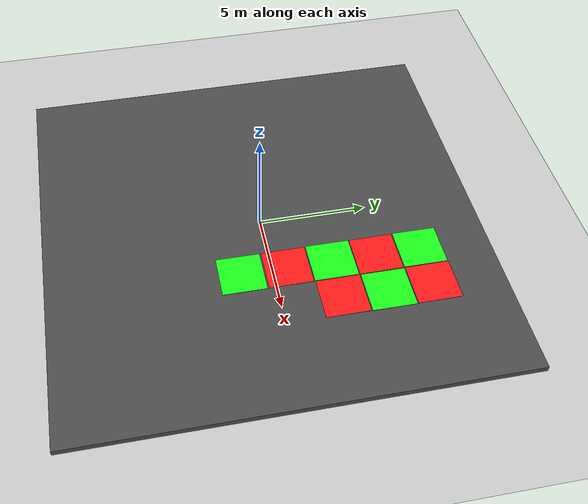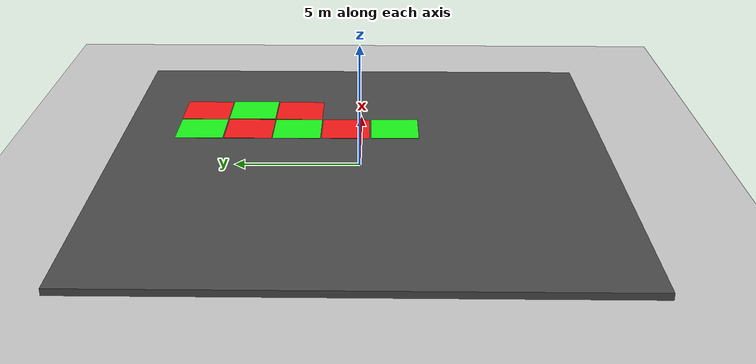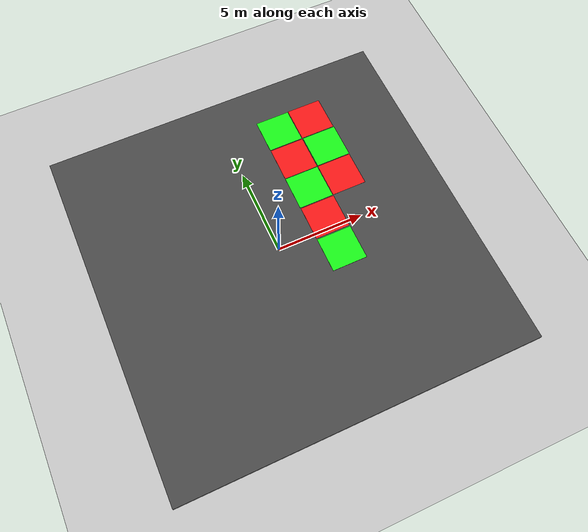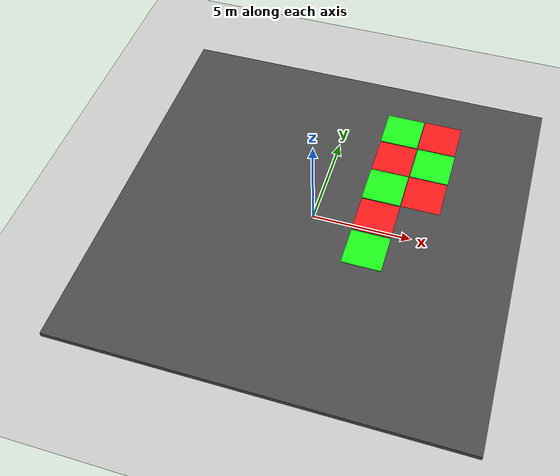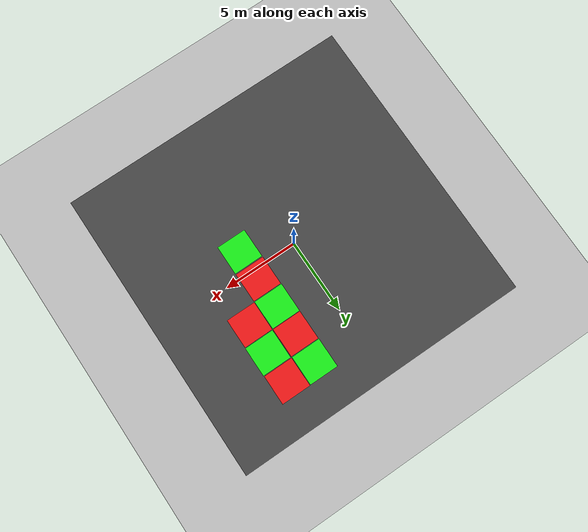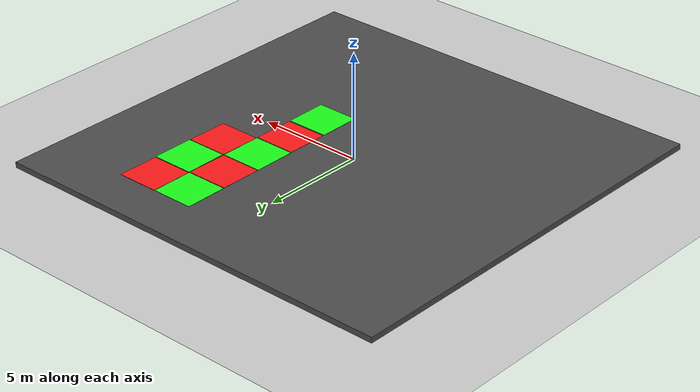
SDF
<sdf version="1.6">
 <world name="default">
  <light name="sun" type="directional">
   <pose>0 0 10 0 -0 0</pose>
   <diffuse>0.8 0.8 0.8 1</diffuse>
   <specular>0.1 0.1 0.1 1</specular>
   <attenuation>
    <range>1000</range>
    <constant>0.9</constant>
    <linear>0.01</linear>
    <quadratic>0.001</quadratic>
   </attenuation>
   <direction>-0.5 0.5 -1</direction>
  </light>
  <model name="ground_plane">
   <static>1</static>
   <link name="link">
    <collision name="collision">
     <geometry><plane><normal>0 0 1</normal><size>100 100</size></plane></geometry>
     <surface><friction><ode><mu>100</mu><mu2>50</mu2></ode></friction></surface>
    </collision>
    <visual name="visual">
     <cast_shadows>0</cast_shadows>
     <geometry><plane><normal>0 0 1</normal><size>100 100</size></plane></geometry>
     <material>
      <script><uri>file://media/materials/scripts/gazebo.material</uri><name>Gazebo/Grey</name></script>
     </material>
    </visual>
   </link>
  </model>
  <gravity>0 0 -9.8</gravity>
  <magnetic_field>6e-06 2.3e-05 -4.2e-05</magnetic_field>
  <atmosphere type="adiabatic"/>
  <physics name="default_physics" default="0" type="ode">
   <max_step_size>0.001</max_step_size>
   <real_time_factor>1</real_time_factor>
   <real_time_update_rate>1000</real_time_update_rate>
  </physics>
  <scene><ambient>0.4 0.4 0.4 1</ambient><background>0.7 0.7 0.7 1</background><shadows>1</shadows></scene>
  <spherical_coordinates>
   <surface_model>EARTH_WGS84</surface_model>
   <latitude_deg>0</latitude_deg>
   <longitude_deg>0</longitude_deg>
   <elevation>0</elevation>
   <heading_deg>0</heading_deg>
  </spherical_coordinates>
  <model name="asphalt_plane_0">
   <link name="link">
    <pose>-0.066256 0.015887 0 0 -0 0</pose>
    <inertial>
     <inertia><ixx>nan</ixx><ixy>0</ixy><ixz>0</ixz><iyy>nan</iyy><iyz>0</iyz><izz>nan</izz></inertia>
     <mass>0</mass>
    </inertial>
    <visual name="visual">
     <cast_shadows>0</cast_shadows>
     <geometry><box><size>20 20 0.468848</size></box></geometry>
     <material>
      <script>
       <uri>model://asphalt_plane/materials/scripts</uri>
       <uri>model://asphalt_plane/materials/textures</uri>
       <name>vrc/asphalt</name>
      </script>
      <ambient>0.5 0.5 0.5 1</ambient>
      <diffuse>0.5 0.5 0.5 1</diffuse>
      <specular>0.2 0.2 0.2 1</specular>
      <emissive>0 0 0 1</emissive>
     </material>
    </visual>
    <collision name="collision">
     <geometry><box><size>20 20 0.468848</size></box></geometry>
     <surface>
      <friction>
       <ode><mu>1</mu><mu2>1</mu2><fdir1>0 0 0</fdir1><slip1>0</slip1><slip2>0</slip2></ode>
       <torsional>
        <coefficient>1</coefficient>
        <patch_radius>0</patch_radius>
        <surface_radius>0</surface_radius>
        <use_patch_radius>1</use_patch_radius>
        <ode><slip>0</slip></ode>
       </torsional>
      </friction>
      <bounce><restitution_coefficient>0</restitution_coefficient><threshold>1e+06</threshold></bounce>
      <contact>
       <collide_without_contact>0</collide_without_contact>
       <collide_without_contact_bitmask>1</collide_without_contact_bitmask>
       <collide_bitmask>1</collide_bitmask>
       <ode>
        <soft_cfm>0</soft_cfm>
        <soft_erp>0.2</soft_erp>
        <kp>1e+13</kp>
        <kd>1</kd>
        <max_vel>0.01</max_vel>
        <min_depth>0</min_depth>
       </ode>
       <bullet>
        <split_impulse>1</split_impulse>
        <split_impulse_penetration_threshold>-0.01</split_impulse_penetration_threshold>
        <soft_cfm>0</soft_cfm>
        <soft_erp>0.2</soft_erp>
        <kp>1e+13</kp>
        <kd>1</kd>
       </bullet>
      </contact>
     </surface>
    </collision>
   </link>
   <static>1</static>
   <pose>0.256254 -0.022685 0 0 -0 0</pose>
  </model>
  <model name="grey_wall_0_clone_clone_0">
   <static>1</static>
   <link name="link">
    <pose>-1.03675 8.1315 0.144086 1.56651 -0 0</pose>
    <collision name="collision">
     <geometry><box><size>2 0.2 2</size></box></geometry>
     <surface><friction><ode><mu>1</mu><mu2>5</mu2></ode></friction></surface>
    </collision>
    <visual name="visual">
     <cast_shadows>0</cast_shadows>
     <geometry><box><size>2 0.2 2</size></box></geometry>
     <material>
      <script>
       <uri>model://grey_wall/materials/scripts</uri>
       <uri>model://grey_wall/materials/textures</uri>
       <name>vrc/grey_wall</name>
      </script>
      <ambient>0.1 1 0.1 0</ambient>
     </material>
    </visual>
   </link>
   <pose>4.10002 -5.44264 0.006001 0 -0 0</pose>
  </model>
  <model name="grey_wall_clone_clone_1">
   <static>1</static>
   <link name="link">
    <pose>-3.10598 4.01438 0.152279 1.57591 -0 0</pose>
    <collision name="collision">
     <geometry><box><size>2 0.2 2</size></box></geometry>
     <surface><friction><ode><mu>1000</mu><mu2>500</mu2></ode></friction></surface>
    </collision>
    <visual name="visual">
     <cast_shadows>0</cast_shadows>
     <geometry><box><size>2 0.2 2</size></box></geometry>
     <material>
      <script>
       <uri>model://grey_wall/materials/scripts</uri>
       <uri>model://grey_wall/materials/textures</uri>
       <name>vrc/grey_wall</name>
      </script>
      <ambient>1 0.1 0.1 0</ambient>
     </material>
    </visual>
   </link>
   <pose>6.18843 -3.37094 -0.007159 0 -0 0</pose>
  </model>
  <model name="grey_wall_clone_clone_2">
   <static>1</static>
   <link name="link">
    <pose>-3.10685 8.13792 0.152279 1.57591 -0 0</pose>
    <collision name="collision">
     <geometry><box><size>2 0.2 2</size></box></geometry>
     <surface><friction><ode><mu>1000</mu><mu2>500</mu2></ode></friction></surface>
    </collision>
    <visual name="visual">
     <cast_shadows>0</cast_shadows>
     <geometry><box><size>2 0.2 2</size></box></geometry>
     <material>
      <script>
       <uri>model://grey_wall/materials/scripts</uri>
       <uri>model://grey_wall/materials/textures</uri>
       <name>vrc/grey_wall</name>
      </script>
      <ambient>1 0.1 0.1 0</ambient>
     </material>
    </visual>
   </link>
   <pose>6.17456 -3.41684 -0.007159 0 -0 0</pose>
  </model>
  <model name="grey_wall_clone_clone_3">
   <static>1</static>
   <link name="link">
    <pose>1.00351 8.14369 0.152279 1.57591 -0 0</pose>
    <collision name="collision">
     <geometry><box><size>2 0.2 2</size></box></geometry>
     <surface><friction><ode><mu>1000</mu><mu2>500</mu2></ode></friction></surface>
    </collision>
    <visual name="visual">
     <cast_shadows>0</cast_shadows>
     <geometry><box><size>2 0.2 2</size></box></geometry>
     <material>
      <script>
       <uri>model://grey_wall/materials/scripts</uri>
       <uri>model://grey_wall/materials/textures</uri>
       <name>vrc/grey_wall</name>
      </script>
      <ambient>1 0.1 0.1 0</ambient>
     </material>
    </visual>
   </link>
   <pose>4.08026 -1.36471 -0.007159 0 -0 0</pose>
  </model>
  <model name="grey_wall_clone_clone_6">
   <static>1</static>
   <link name="link">
    <pose>-3.04739 -4.06202 0.152279 1.57591 -0 0</pose>
    <collision name="collision">
     <geometry><box><size>2 0.2 2</size></box></geometry>
     <surface><friction><ode><mu>1000</mu><mu2>500</mu2></ode></friction></surface>
    </collision>
    <visual name="visual">
     <cast_shadows>0</cast_shadows>
     <geometry><box><size>2 0.2 2</size></box></geometry>
     <material>
      <script>
       <uri>model://grey_wall/materials/scripts</uri>
       <uri>model://grey_wall/materials/textures</uri>
       <name>vrc/grey_wall</name>
      </script>
      <ambient>1 0.1 0.1 0</ambient>
     </material>
    </visual>
   </link>
   <pose>8.13869 6.75888 -0.007159 0 -0 0</pose>
  </model>
  <model name="grey_wall_0_clone_clone_2">
   <static>1</static>
   <link name="link">
    <pose>-3.04707 2.00179 0.144086 1.56651 -0 0</pose>
    <collision name="collision">
     <geometry><box><size>2 0.2 2</size></box></geometry>
     <surface><friction><ode><mu>1</mu><mu2>5</mu2></ode></friction></surface>
    </collision>
    <visual name="visual">
     <cast_shadows>0</cast_shadows>
     <geometry><box><size>2 0.2 2</size></box></geometry>
     <material>
      <script>
       <uri>model://grey_wall/materials/scripts</uri>
       <uri>model://grey_wall/materials/textures</uri>
       <name>vrc/grey_wall</name>
      </script>
      <ambient>0.1 1 0.1 0</ambient>
     </material>
    </visual>
   </link>
   <pose>6.13693 -3.42654 0.006001 0 -0 0</pose>
  </model>
  <model name="grey_wall_0_clone_clone_3">
   <static>1</static>
   <link name="link">
    <pose>-3.07681 -2.04705 0.144086 1.56651 -0 0</pose>
    <collision name="collision">
     <geometry><box><size>2 0.2 2</size></box></geometry>
     <surface><friction><ode><mu>1</mu><mu2>5</mu2></ode></friction></surface>
    </collision>
    <visual name="visual">
     <cast_shadows>0</cast_shadows>
     <geometry><box><size>2 0.2 2</size></box></geometry>
     <material>
      <script>
       <uri>model://grey_wall/materials/scripts</uri>
       <uri>model://grey_wall/materials/textures</uri>
       <name>vrc/grey_wall</name>
      </script>
      <ambient>0.1 1 0.1 0</ambient>
     </material>
    </visual>
   </link>
   <pose>8.18522 6.78193 0.006001 0 -0 0</pose>
  </model>
  <model name="grey_wall_0_clone_clone_4">
   <static>1</static>
   <link name="link">
    <pose>1.04306 -2.03654 0.144086 1.56651 -0 0</pose>
    <collision name="collision">
     <geometry><box><size>2 0.2 2</size></box></geometry>
     <surface><friction><ode><mu>1</mu><mu2>5</mu2></ode></friction></surface>
    </collision>
    <visual name="visual">
     <cast_shadows>0</cast_shadows>
     <geometry><box><size>2 0.2 2</size></box></geometry>
     <material>
      <script>
       <uri>model://grey_wall/materials/scripts</uri>
       <uri>model://grey_wall/materials/textures</uri>
       <name>vrc/grey_wall</name>
      </script>
      <ambient>0.1 1 0.1 0</ambient>
     </material>
    </visual>
   </link>
   <pose>2.01175 8.80099 0.006001 0 -0 0</pose>
  </model>
 </world>
</sdf>
